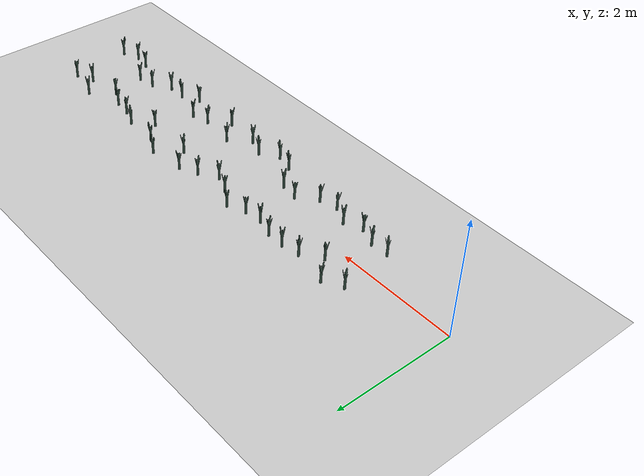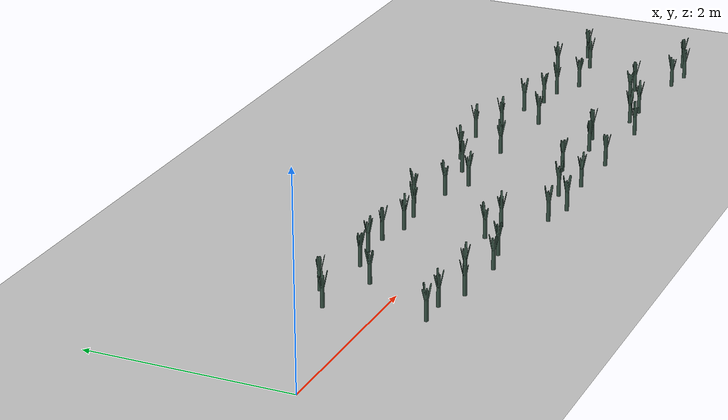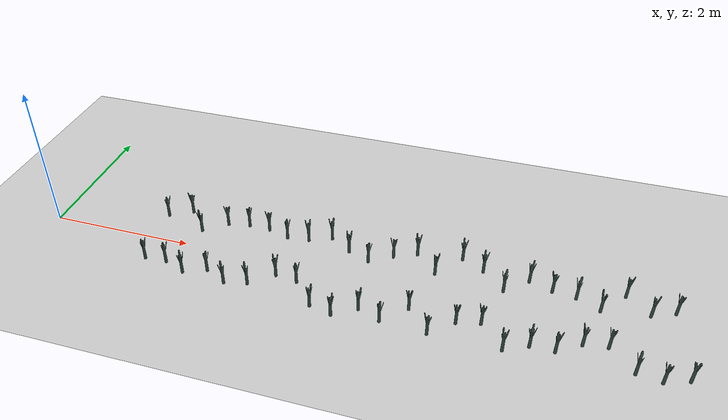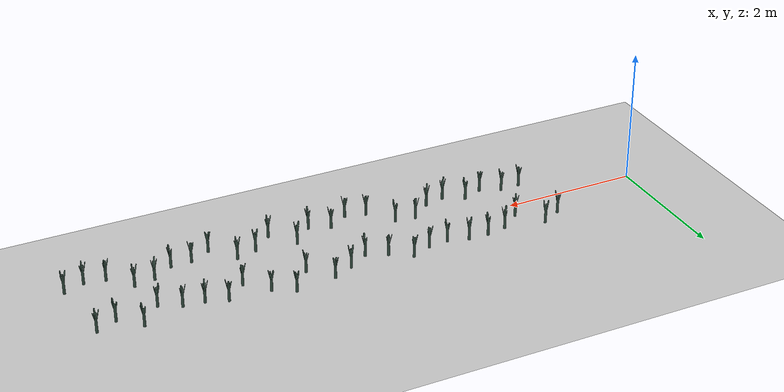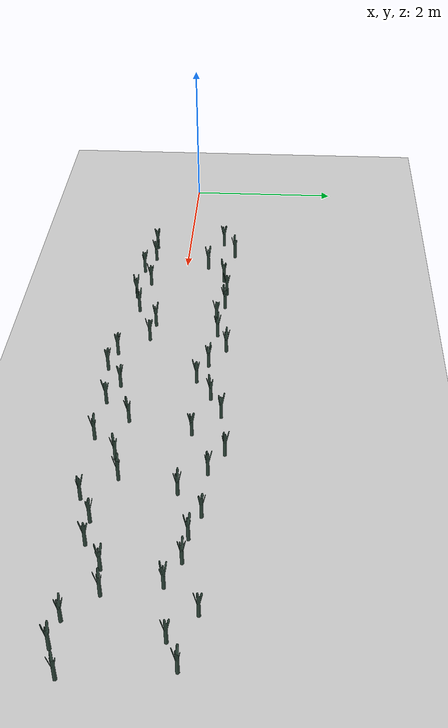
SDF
<sdf version="1.6">
 <world name="default">
  <light name="sun" type="directional">
   <pose>0 0 10 0 -0 0</pose>
   <diffuse>0.5 0.5 0.5 1</diffuse>
   <specular>0.1 0.1 0.1 1</specular>
   <attenuation>
    <range>1000</range>
    <constant>0.9</constant>
    <linear>0.01</linear>
    <quadratic>0.001</quadratic>
   </attenuation>
   <direction>0.9 0.5 -1</direction>
  </light>
  <scene><background>130 200 255 1</background><ambient>130 140 140 1</ambient></scene>
  <include><uri>model://dirt_plane</uri></include>
  <include><uri>model://Leek</uri><pose>1.500000 0.480628 0.15 0 0 -7.340674</pose><static>0</static></include>
  <include><uri>model://Leek</uri><pose>1.800000 0.651079 0.15 0 0 160.385171</pose><static>0</static></include>
  <include><uri>model://Leek</uri><pose>2.100000 0.301484 0.15 0 0 84.194167</pose><static>0</static></include>
  <include><uri>model://Leek</uri><pose>2.400000 0.533658 0.15 0 0 -58.889359</pose><static>0</static></include>
  <include><uri>model://Leek</uri><pose>2.700000 0.589793 0.15 0 0 142.872501</pose><static>0</static></include>
  <include>
   <uri>model://Leek</uri>
   <pose>3.000000 0.583363 0.15 0 0 -172.326836</pose>
   <static>0</static>
  </include>
  <include><uri>model://Leek</uri><pose>3.300000 0.494014 0.15 0 0 4.934066</pose><static>0</static></include>
  <include><uri>model://Leek</uri><pose>3.600000 0.526391 0.15 0 0 126.952930</pose><static>0</static></include>
  <include><uri>model://Leek</uri><pose>3.900000 0.653021 0.15 0 0 -61.428219</pose><static>0</static></include>
  <include><uri>model://Leek</uri><pose>4.200000 0.456598 0.15 0 0 -80.735410</pose><static>0</static></include>
  <include><uri>model://Leek</uri><pose>4.500000 0.335029 0.15 0 0 10.890214</pose><static>0</static></include>
  <include><uri>model://Leek</uri><pose>4.800000 0.525076 0.15 0 0 66.442700</pose><static>0</static></include>
  <include><uri>model://Leek</uri><pose>5.100000 0.664248 0.15 0 0 25.716775</pose><static>0</static></include>
  <include><uri>model://Leek</uri><pose>5.400000 0.354739 0.15 0 0 -82.581878</pose><static>0</static></include>
  <include><uri>model://Leek</uri><pose>5.700000 0.743685 0.15 0 0 125.858255</pose><static>0</static></include>
  <include>
   <uri>model://Leek</uri>
   <pose>6.000000 0.579072 0.15 0 0 -150.681494</pose>
   <static>0</static>
  </include>
  <include><uri>model://Leek</uri><pose>6.300000 0.285023 0.15 0 0 -86.525906</pose><static>0</static></include>
  <include><uri>model://Leek</uri><pose>6.600000 0.559369 0.15 0 0 -82.111816</pose><static>0</static></include>
  <include><uri>model://Leek</uri><pose>6.900000 0.451046 0.15 0 0 9.037126</pose><static>0</static></include>
  <include><uri>model://Leek</uri><pose>7.200000 0.416055 0.15 0 0 -36.396121</pose><static>0</static></include>
  <include><uri>model://Leek</uri><pose>7.500000 0.269334 0.15 0 0 102.761125</pose><static>0</static></include>
  <include><uri>model://Leek</uri><pose>7.800000 0.628752 0.15 0 0 118.165335</pose><static>0</static></include>
  <include><uri>model://Leek</uri><pose>8.100000 0.358545 0.15 0 0 80.515501</pose><static>0</static></include>
  <include><uri>model://Leek</uri><pose>8.400000 0.490703 0.15 0 0 53.310459</pose><static>0</static></include>
  <include><uri>model://Leek</uri><pose>1.618593 -0.450611 0.15 0 0 87.215131</pose><static>0</static></include>
  <include>
   <uri>model://Leek</uri>
   <pose>1.918593 -0.437399 0.15 0 0 -145.568616</pose>
   <static>0</static>
  </include>
  <include>
   <uri>model://Leek</uri>
   <pose>2.218593 -0.562016 0.15 0 0 -74.917028</pose>
   <static>0</static>
  </include>
  <include><uri>model://Leek</uri><pose>2.518593 -0.439982 0.15 0 0 11.141631</pose><static>0</static></include>
  <include><uri>model://Leek</uri><pose>2.818593 -0.594263 0.15 0 0 77.697509</pose><static>0</static></include>
  <include>
   <uri>model://Leek</uri>
   <pose>3.118593 -0.521258 0.15 0 0 -29.023772</pose>
   <static>0</static>
  </include>
  <include>
   <uri>model://Leek</uri>
   <pose>3.418593 -0.271850 0.15 0 0 -156.228331</pose>
   <static>0</static>
  </include>
  <include>
   <uri>model://Leek</uri>
   <pose>3.718593 -0.314593 0.15 0 0 149.537064</pose>
   <static>0</static>
  </include>
  <include>
   <uri>model://Leek</uri>
   <pose>4.018593 -0.673122 0.15 0 0 -100.886163</pose>
   <static>0</static>
  </include>
  <include><uri>model://Leek</uri><pose>4.318593 -0.749207 0.15 0 0 56.239935</pose><static>0</static></include>
  <include>
   <uri>model://Leek</uri>
   <pose>4.618593 -0.555974 0.15 0 0 100.047375</pose>
   <static>0</static>
  </include>
  <include><uri>model://Leek</uri><pose>4.918593 -0.679350 0.15 0 0 -7.931265</pose><static>0</static></include>
  <include><uri>model://Leek</uri><pose>5.218593 -0.374457 0.15 0 0 -2.497445</pose><static>0</static></include>
  <include><uri>model://Leek</uri><pose>5.518593 -0.718478 0.15 0 0 9.328583</pose><static>0</static></include>
  <include>
   <uri>model://Leek</uri>
   <pose>5.818593 -0.442442 0.15 0 0 135.570669</pose>
   <static>0</static>
  </include>
  <include>
   <uri>model://Leek</uri>
   <pose>6.118593 -0.366929 0.15 0 0 -128.794197</pose>
   <static>0</static>
  </include>
  <include><uri>model://Leek</uri><pose>6.418593 -0.721448 0.15 0 0 75.869452</pose><static>0</static></include>
  <include>
   <uri>model://Leek</uri>
   <pose>6.718593 -0.570688 0.15 0 0 106.679524</pose>
   <static>0</static>
  </include>
  <include>
   <uri>model://Leek</uri>
   <pose>7.018593 -0.567583 0.15 0 0 -26.554484</pose>
   <static>0</static>
  </include>
  <include>
   <uri>model://Leek</uri>
   <pose>7.318593 -0.368634 0.15 0 0 128.211420</pose>
   <static>0</static>
  </include>
  <include>
   <uri>model://Leek</uri>
   <pose>7.618593 -0.321882 0.15 0 0 -178.951226</pose>
   <static>0</static>
  </include>
  <include>
   <uri>model://Leek</uri>
   <pose>7.918593 -0.640144 0.15 0 0 -174.458049</pose>
   <static>0</static>
  </include>
  <include>
   <uri>model://Leek</uri>
   <pose>8.218593 -0.687424 0.15 0 0 -78.659595</pose>
   <static>0</static>
  </include>
  <include><uri>model://Leek</uri><pose>8.518593 -0.576220 0.15 0 0 -2.736094</pose><static>0</static></include>
 </world>
</sdf>

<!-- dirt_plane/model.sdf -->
<sdf version="1.4">
<model name="dirt_plane">
  <static>true</static>
    <link name="link">
      <collision name="collision">
        <geometry>
          <plane>
            <normal>0 0 1</normal>
            <size>100 100</size>
          </plane>
        </geometry>
        <surface>
          <friction>
            <ode>
              <mu>0.99</mu>
              <mu2>0.99</mu2>
            </ode>
          </friction>
        </surface>
      </collision>
      <visual name="visual">
        <cast_shadows>false</cast_shadows>
        <geometry>
          <plane>
            <normal>0 0 1</normal>
            <size>100 100</size>
          </plane>
        </geometry>
        <material>
          <script>
            <uri>model://ground_plane/materials/scripts/my_ground_plane.material</uri>
            <uri>model://ground_plane/materials/textures</uri>
            <name>my_ground_plane/Dirt</name>
          </script>
        </material>
      </visual>
    </link>
  </model>
</sdf>

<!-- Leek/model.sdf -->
<sdf version='1.6'>
  <model name='Leek'>
    <link name='link'>
      <pose frame=''>0 0 0 0 -0 0</pose>
      <inertial>
        <mass>1</mass>
        <inertia>
          <ixx>0.145833</ixx>
          <ixy>0</ixy>
          <ixz>0</ixz>
          <iyy>0.145833</iyy>
          <iyz>0</iyz>
          <izz>0.125</izz>
        </inertia>
        <pose frame=''>0 0 0 0 -0 0</pose>
      </inertial>
      <self_collide>0</self_collide>
      <kinematic>0</kinematic>
      <gravity>1</gravity>
      <visual name='visual'>
        <geometry>
          <mesh>
            <uri>model://Leek/Poireau.dae</uri>
            <scale>1 1 1</scale>
          </mesh>
        </geometry>
        <material>
          <script>
            <name>Gazebo/Grey</name>
            <uri>file://media/materials/scripts/gazebo.material</uri>
          </script>
          <ambient>0.3 0.6 0.5 0</ambient>
          <diffuse>0.2 0.3 0.25 0</diffuse>
          <specular>0 0 0 1</specular>
          <emissive>0 0 0 1</emissive>
          <shader type='vertex'>
            <normal_map>__default__</normal_map>
          </shader>
        </material>
        <pose frame=''>0 0 -0.08 0 -0 0</pose>
        <cast_shadows>1</cast_shadows>
        <transparency>0</transparency>
      </visual>
      <collision name='collision'>
        <laser_retro>0</laser_retro>
        <max_contacts>10</max_contacts>
        <pose frame=''>0 0 0 0 -0 0</pose>
        <geometry>
          <cylinder>
            <radius>0.02</radius>
            <length>0.25</length>
          </cylinder>
        </geometry>
        <surface>
          <friction>
            <ode>
              <mu>1</mu>
              <mu2>1</mu2>
              <fdir1>0 0 0</fdir1>
              <slip1>0</slip1>
              <slip2>0</slip2>
            </ode>
            <torsional>
              <coefficient>1</coefficient>
              <patch_radius>0</patch_radius>
              <surface_radius>0</surface_radius>
              <use_patch_radius>1</use_patch_radius>
              <ode>
                <slip>0</slip>
              </ode>
            </torsional>
          </friction>
          <bounce>
            <restitution_coefficient>0</restitution_coefficient>
            <threshold>1e+06</threshold>
          </bounce>
          <contact>
            <collide_without_contact>0</collide_without_contact>
            <collide_without_contact_bitmask>1</collide_without_contact_bitmask>
            <collide_bitmask>1</collide_bitmask>
            <ode>
              <soft_cfm>0</soft_cfm>
              <soft_erp>0.2</soft_erp>
              <kp>1e+13</kp>
              <kd>1</kd>
              <max_vel>0.01</max_vel>
              <min_depth>0</min_depth>
            </ode>
            <bullet>
              <split_impulse>1</split_impulse>
              <split_impulse_penetration_threshold>-0.01</split_impulse_penetration_threshold>
              <soft_cfm>0</soft_cfm>
              <soft_erp>0.2</soft_erp>
              <kp>1e+13</kp>
              <kd>1</kd>
            </bullet>
          </contact>
        </surface>
      </collision>
    </link>
    <static>0</static>
    <allow_auto_disable>1</allow_auto_disable>
  </model>
</sdf>
